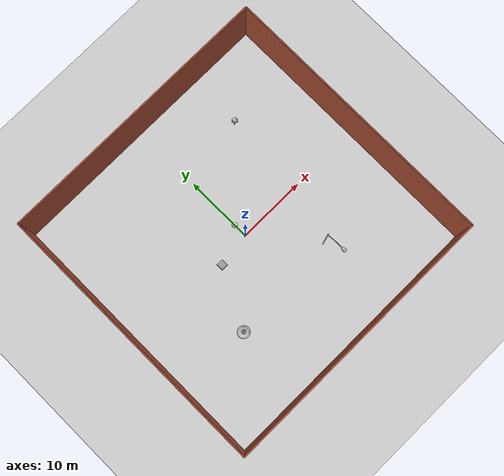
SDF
<sdf version="1.6">
 <world name="my_world">
  <model name="ball">
   <link name="link_0">
    <inertial>
     <mass>1</mass>
     <inertia><ixx>0.064</ixx><ixy>0</ixy><ixz>0</ixz><iyy>0.064</iyy><iyz>0</iyz><izz>0.064</izz></inertia>
    </inertial>
    <pose>-4e-06 -1e-06 -0 0 -0 0</pose>
    <visual name="visual">
     <geometry><sphere><radius>0.4</radius></sphere></geometry>
     <material>
      <lighting>1</lighting>
      <script><uri>file://media/materials/scripts/gazebo.material</uri><name>Gazebo/White</name></script>
      <shader type="pixel"><normal_map>__default__</normal_map></shader>
      <ambient>1 1 1 1</ambient>
      <diffuse>0.7 0.7 0.7 1</diffuse>
      <specular>0.01 0.01 0.01 1</specular>
      <emissive>0 0 0 1</emissive>
     </material>
     <cast_shadows>0</cast_shadows>
    </visual>
    <collision name="collision">
     <geometry><sphere><radius>0.4</radius></sphere></geometry>
     <surface>
      <friction>
       <ode><mu>1</mu><mu2>1</mu2><fdir1>0 0 0</fdir1><slip1>0</slip1><slip2>0</slip2></ode>
       <torsional>
        <coefficient>1</coefficient>
        <patch_radius>0</patch_radius>
        <surface_radius>0</surface_radius>
        <use_patch_radius>1</use_patch_radius>
        <ode><slip>0</slip></ode>
       </torsional>
      </friction>
      <bounce><restitution_coefficient>0</restitution_coefficient><threshold>1e+06</threshold></bounce>
      <contact>
       <collide_without_contact>0</collide_without_contact>
       <collide_without_contact_bitmask>1</collide_without_contact_bitmask>
       <collide_bitmask>1</collide_bitmask>
       <ode>
        <soft_cfm>0</soft_cfm>
        <soft_erp>0.2</soft_erp>
        <kp>1e+13</kp>
        <kd>1</kd>
        <max_vel>0.01</max_vel>
        <min_depth>0</min_depth>
       </ode>
       <bullet>
        <split_impulse>1</split_impulse>
        <split_impulse_penetration_threshold>-0.01</split_impulse_penetration_threshold>
        <soft_cfm>0</soft_cfm>
        <soft_erp>0.2</soft_erp>
        <kp>1e+13</kp>
        <kd>1</kd>
       </bullet>
      </contact>
     </surface>
    </collision>
   </link>
   <static>0</static>
   <pose>0 2 0.4 0 -0 0</pose>
  </model>
  <light name="sun" type="directional">
   <pose>0 0 10 0 -0 0</pose>
   <diffuse>0.8 0.8 0.8 1</diffuse>
   <specular>0.2 0.2 0.2 1</specular>
   <attenuation>
    <range>1000</range>
    <constant>0.9</constant>
    <linear>0.01</linear>
    <quadratic>0.001</quadratic>
   </attenuation>
   <direction>-0.5 0.1 -0.9</direction>
  </light>
  <model name="ground_plane">
   <static>1</static>
   <link name="link">
    <collision name="collision">
     <geometry><plane><normal>0 0 1</normal><size>100 100</size></plane></geometry>
     <surface><friction><ode><mu>100</mu><mu2>50</mu2></ode></friction></surface>
    </collision>
    <visual name="visual">
     <cast_shadows>0</cast_shadows>
     <geometry><plane><normal>0 0 1</normal><size>100 100</size></plane></geometry>
     <material>
      <script><uri>file://media/materials/scripts/gazebo.material</uri><name>Gazebo/Grey</name></script>
     </material>
    </visual>
   </link>
  </model>
  <model name="room">
   <link name="Wall_11">
    <collision name="Wall_11_Collision">
     <geometry><box><size>40 0.2 10</size></box></geometry>
     <pose>0 0 5 0 -0 0</pose>
    </collision>
    <visual name="Wall_11_Visual">
     <pose>0 0 5 0 -0 0</pose>
     <geometry><box><size>40 0.2 10</size></box></geometry>
     <material>
      <script><uri>file://media/materials/scripts/gazebo.material</uri><name>Gazebo/Bricks</name></script>
      <ambient>1 1 1 1</ambient>
     </material>
     <meta><layer>0</layer></meta>
    </visual>
    <pose>20 0 0 0 -0 -1.5708</pose>
   </link>
   <link name="Wall_5">
    <collision name="Wall_5_Collision">
     <geometry><box><size>40 0.2 10</size></box></geometry>
     <pose>0 0 5 0 -0 0</pose>
    </collision>
    <visual name="Wall_5_Visual">
     <pose>0 0 5 0 -0 0</pose>
     <geometry><box><size>40 0.2 10</size></box></geometry>
     <material>
      <script><uri>file://media/materials/scripts/gazebo.material</uri><name>Gazebo/Bricks</name></script>
      <ambient>1 1 1 1</ambient>
     </material>
     <meta><layer>0</layer></meta>
    </visual>
    <pose>0 -20 0 0 -0 0</pose>
   </link>
   <link name="Wall_7">
    <collision name="Wall_7_Collision">
     <geometry><box><size>40 0.2 10</size></box></geometry>
     <pose>0 0 5 0 -0 0</pose>
    </collision>
    <visual name="Wall_7_Visual">
     <pose>0 0 5 0 -0 0</pose>
     <geometry><box><size>40 0.2 10</size></box></geometry>
     <material>
      <script><uri>file://media/materials/scripts/gazebo.material</uri><name>Gazebo/Bricks</name></script>
      <ambient>1 1 1 1</ambient>
     </material>
     <meta><layer>0</layer></meta>
    </visual>
    <pose>0 20 0 0 -0 0</pose>
   </link>
   <link name="Wall_9">
    <collision name="Wall_9_Collision">
     <geometry><box><size>40 0.2 10</size></box></geometry>
     <pose>0 0 5 0 -0 0</pose>
    </collision>
    <visual name="Wall_9_Visual">
     <pose>0 0 5 0 -0 0</pose>
     <geometry><box><size>40 0.2 10</size></box></geometry>
     <material>
      <script><uri>file://media/materials/scripts/gazebo.material</uri><name>Gazebo/Bricks</name></script>
      <ambient>1 1 1 1</ambient>
     </material>
     <meta><layer>0</layer></meta>
    </visual>
    <pose>-20 0 0 0 -0 -1.5708</pose>
   </link>
   <static>1</static>
  </model>
  <gravity>0 0 -9.8</gravity>
  <magnetic_field>6e-06 2.3e-05 -4.2e-05</magnetic_field>
  <atmosphere type="adiabatic"/>
  <physics name="default_physics" default="0" type="ode">
   <max_step_size>0.001</max_step_size>
   <real_time_factor>1</real_time_factor>
   <real_time_update_rate>1000</real_time_update_rate>
  </physics>
  <scene><ambient>0.4 0.4 0.4 1</ambient><background>0.7 0.7 0.7 1</background><shadows>1</shadows></scene>
  <spherical_coordinates>
   <surface_model>EARTH_WGS84</surface_model>
   <latitude_deg>0</latitude_deg>
   <longitude_deg>0</longitude_deg>
   <elevation>0</elevation>
   <heading_deg>0</heading_deg>
  </spherical_coordinates>
  <model name="kbot">
   <link name="base_footprint">
    <inertial>
     <pose>0.000644 0 0.020545 0 -0 0</pose>
     <mass>20.2</mass>
     <inertia>
      <ixx>0.030059</ixx>
      <ixy>0</ixy>
      <ixz>-0.000707921</ixz>
      <iyy>0.052134</iyy>
      <iyz>0</iyz>
      <izz>0.0222966</izz>
     </inertia>
    </inertial>
    <collision name="base_footprint_fixed_joint_lump__base_link_collision">
     <pose>0 0 0.04 0 -0 0</pose>
     <geometry><box><size>0.16 0.16 0.01</size></box></geometry>
    </collision>
    <collision name="base_footprint_fixed_joint_lump__sensor_laser_collision_1">
     <pose>0.065 0 0.075 0 -0 0</pose>
     <geometry><box><size>0.03 0.03 0.04</size></box></geometry>
    </collision>
    <visual name="base_footprint_visual"><geometry><box><size>0.001 0.001 0.001</size></box></geometry></visual>
    <visual name="base_footprint_fixed_joint_lump__base_link_visual_1">
     <pose>0 0 0.04 0 -0 0</pose>
     <geometry><box><size>0.16 0.16 0.01</size></box></geometry>
    </visual>
    <visual name="base_footprint_fixed_joint_lump__sensor_laser_visual_2">
     <pose>0.065 0 0.075 0 -0 0</pose>
     <geometry>
      <mesh>
       <scale>1 1 1</scale>
       <uri>/home/expert/Documents/constructsim/catkin_ws/src/kbot_description/meshes/hokuyo.dae</uri>
      </mesh>
     </geometry>
     <material><script><uri>__default__</uri><name>__default__</name></script></material>
    </visual>
    <sensor name="head_hokuyo_sensor" type="ray">
     <visualize>1</visualize>
     <update_rate>20</update_rate>
     <ray>
      <scan>
       <horizontal>
        <samples>1440</samples>
        <resolution>1</resolution>
        <min_angle>-3.14159</min_angle>
        <max_angle>3.14159</max_angle>
       </horizontal>
       <vertical><samples>1</samples><min_angle>0</min_angle><max_angle>0</max_angle></vertical>
      </scan>
      <range><min>0.1</min><max>30</max><resolution>0.01</resolution></range>
      <noise><type>gaussian</type><mean>0</mean><stddev>0.01</stddev></noise>
     </ray>
     <plugin name="gazebo_ros_head_hokuyo_controller" filename="libgazebo_ros_laser.so">
      <topicName>/kbot/laser_scan/scan</topicName>
      <frameName>sensor_laser</frameName>
      <robotNamespace>/</robotNamespace>
     </plugin>
     <pose>0.065 0 0.075 0 -0 0</pose>
    </sensor>
   </link>
   <link name="caster_wheel">
    <pose>-0.052 0 0.0175 0 -0 0</pose>
    <inertial>
     <mass>10</mass>
     <inertia>
      <ixx>0.001225</ixx>
      <ixy>0</ixy>
      <ixz>0</ixz>
      <iyy>0.001225</iyy>
      <iyz>0</iyz>
      <izz>0.001225</izz>
     </inertia>
    </inertial>
    <collision name="caster_wheel_collision">
     <geometry><sphere><radius>0.0175</radius></sphere></geometry>
    </collision>
    <visual name="caster_wheel_visual"><geometry><sphere><radius>0.0175</radius></sphere></geometry></visual>
   </link>
   <joint name="caster_wheel_joint" type="revolute">
    <child>caster_wheel</child>
    <parent>base_footprint</parent>
    <axis>
     <xyz>0 1 0</xyz>
     <limit><lower>-1e+16</lower><upper>1e+16</upper></limit>
     <dynamics><spring_reference>0</spring_reference><spring_stiffness>0</spring_stiffness></dynamics>
     <use_parent_model_frame>1</use_parent_model_frame>
    </axis>
   </joint>
   <link name="left_wheel">
    <pose>0.02 0.087 0.035 0 -0 0</pose>
    <inertial>
     <mass>10</mass>
     <inertia>
      <ixx>0.00308333</ixx>
      <ixy>0</ixy>
      <ixz>0</ixz>
      <iyy>0.00308333</iyy>
      <iyz>0</iyz>
      <izz>0.006125</izz>
     </inertia>
    </inertial>
    <collision name="left_wheel_collision">
     <pose>0 0 0 1.5708 -0 0</pose>
     <geometry><cylinder><length>0.005</length><radius>0.035</radius></cylinder></geometry>
    </collision>
    <visual name="left_wheel_visual">
     <pose>0 0 0 1.5708 -0 0</pose>
     <geometry><cylinder><length>0.005</length><radius>0.035</radius></cylinder></geometry>
    </visual>
   </link>
   <joint name="left_wheel_joint" type="revolute">
    <child>left_wheel</child>
    <parent>base_footprint</parent>
    <axis>
     <xyz>0 1 0</xyz>
     <limit><lower>-1e+16</lower><upper>1e+16</upper></limit>
     <dynamics><spring_reference>0</spring_reference><spring_stiffness>0</spring_stiffness></dynamics>
     <use_parent_model_frame>1</use_parent_model_frame>
    </axis>
   </joint>
   <link name="right_wheel">
    <pose>0.02 -0.087 0.035 0 -0 0</pose>
    <inertial>
     <mass>10</mass>
     <inertia>
      <ixx>0.00308333</ixx>
      <ixy>0</ixy>
      <ixz>0</ixz>
      <iyy>0.00308333</iyy>
      <iyz>0</iyz>
      <izz>0.006125</izz>
     </inertia>
    </inertial>
    <collision name="right_wheel_collision">
     <pose>0 0 0 1.5708 -0 0</pose>
     <geometry><cylinder><length>0.005</length><radius>0.035</radius></cylinder></geometry>
    </collision>
    <visual name="right_wheel_visual">
     <pose>0 0 0 1.5708 -0 0</pose>
     <geometry><cylinder><length>0.005</length><radius>0.035</radius></cylinder></geometry>
    </visual>
   </link>
   <joint name="right_wheel_joint" type="revolute">
    <child>right_wheel</child>
    <parent>base_footprint</parent>
    <axis>
     <xyz>0 1 0</xyz>
     <limit><lower>-1e+16</lower><upper>1e+16</upper></limit>
     <dynamics><spring_reference>0</spring_reference><spring_stiffness>0</spring_stiffness></dynamics>
     <use_parent_model_frame>1</use_parent_model_frame>
    </axis>
   </joint>
   <static>0</static>
   <plugin name="differential_drive_controller" filename="libgazebo_ros_diff_drive.so">
    <alwaysOn>0</alwaysOn>
    <legacyMode>0</legacyMode>
    <updateRate>20</updateRate>
    <leftJoint>left_wheel_joint</leftJoint>
    <rightJoint>right_wheel_joint</rightJoint>
    <wheelSeparation>0.15</wheelSeparation>
    <wheelDiameter>0.07</wheelDiameter>
    <torque>20</torque>
    <commandTopic>/kbot/base_controller/cmd_vel</commandTopic>
    <odometryTopic>/kbot/base_controller/odom</odometryTopic>
    <odometryFrame>odom</odometryFrame>
    <robotBaseFrame>base_footprint</robotBaseFrame>
    <robotNamespace>/</robotNamespace>
   </plugin>
   <pose>-0.059708 0.000297 -1e-06 2.4e-05 2.5e-05 -0.191498</pose>
  </model>
  <model name="unit_box">
   <pose>-4.97975 -0.6521 0.499995 -1e-05 -0 -0</pose>
   <link name="link">
    <inertial>
     <mass>1</mass>
     <inertia>
      <ixx>0.166667</ixx>
      <ixy>0</ixy>
      <ixz>0</ixz>
      <iyy>0.166667</iyy>
      <iyz>0</iyz>
      <izz>0.166667</izz>
     </inertia>
    </inertial>
    <collision name="collision"><geometry><box><size>1 1 1</size></box></geometry></collision>
    <visual name="visual">
     <geometry><box><size>1 1 1</size></box></geometry>
     <material>
      <script><name>Gazebo/Grey</name><uri>file://media/materials/scripts/gazebo.material</uri></script>
     </material>
    </visual>
   </link>
  </model>
  <model name="Lamp Post">
   <static>1</static>
   <link name="link">
    <collision name="collision">
     <geometry><mesh><uri>model://lamp_post/meshes/lamp_post.dae</uri><scale>3 3 3</scale></mesh></geometry>
    </collision>
    <visual name="visual">
     <geometry><mesh><uri>model://lamp_post/meshes/lamp_post.dae</uri><scale>3 3 3</scale></mesh></geometry>
    </visual>
   </link>
   <pose>6.60351 -8.11283 0 0 -0 0</pose>
  </model>
  <model name="postbox">
   <static>1</static>
   <link name="link">
    <collision name="collision">
     <geometry><mesh><uri>model://postbox/meshes/postbox.dae</uri></mesh></geometry>
    </collision>
    <visual name="visual"><geometry><mesh><uri>model://postbox/meshes/postbox.dae</uri></mesh></geometry></visual>
   </link>
   <pose>10.0244 12.1556 0 0 -0 0</pose>
  </model>
  <model name="fountain">
   <static>1</static>
   <link name="link">
    <collision name="collision">
     <geometry><mesh><uri>model://fountain/meshes/fountain.dae</uri></mesh></geometry>
    </collision>
    <visual name="visual">
     <geometry><mesh><uri>model://fountain/meshes/fountain.dae</uri></mesh></geometry>
    </visual>
   </link>
   <pose>-9.23769 -9.00992 0 0 -0 0</pose>
  </model>
 </world>
</sdf>
